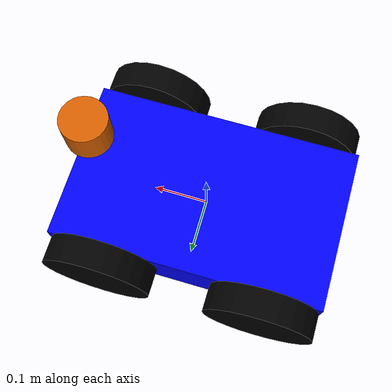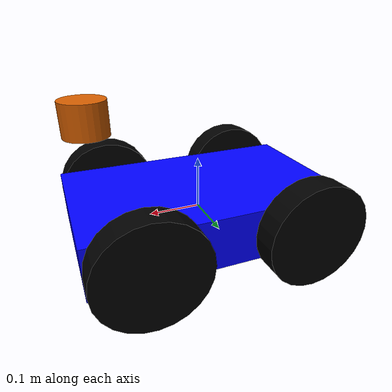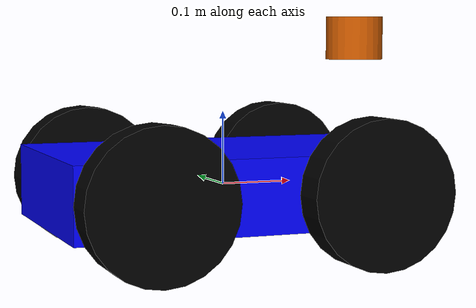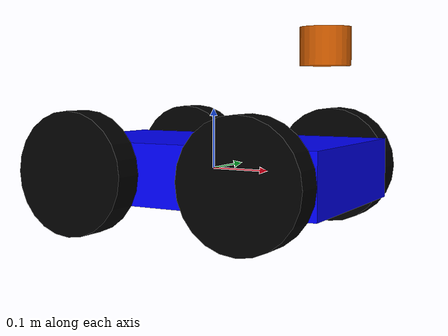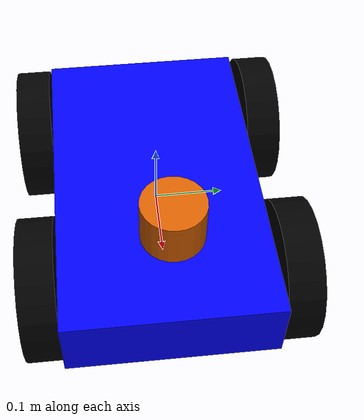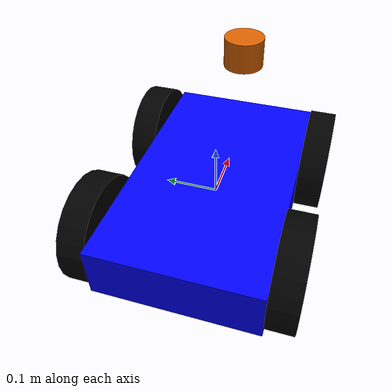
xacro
<?xml version="1.0"?>
<robot name="my_robot" xmlns:xacro="http://www.ros.org/wiki/xacro">

  <!-- ===================== BASE LINK ===================== -->
  <link name="base_link">
    <visual>
      <geometry>
        <box size="0.5 0.3 0.1"/>
      </geometry>
      <material name="blue">
        <color rgba="0 0 1 1"/>
      </material>
    </visual>
    <collision>
      <geometry>
        <box size="0.5 0.3 0.1"/>
      </geometry>
    </collision>
    <inertial>
      <mass value="5.0"/>
      <inertia
        ixx="0.041"
        ixy="0"
        ixz="0"
        iyy="0.07"
        iyz="0"
        izz="0.104"/>
    </inertial>
  </link>

  <!-- ===================== WHEELS ===================== -->
  <!-- Front Left -->
  <link name="front_left_wheel">
    <visual>
      <geometry>
        <cylinder radius="0.1" length="0.05"/>
      </geometry>
      <material name="black">
        <color rgba="0 0 0 1"/>
      </material>
    </visual>
    <collision>
      <geometry>
        <cylinder radius="0.1" length="0.05"/>
      </geometry>
    </collision>
    <inertial>
      <mass value="0.5"/>
      <inertia ixx="0.001" ixy="0" ixz="0" iyy="0.001" iyz="0" izz="0.001"/>
    </inertial>
  </link>

  <!-- Front Right -->
  <link name="front_right_wheel">
    <visual>
      <geometry>
        <cylinder radius="0.1" length="0.05"/>
      </geometry>
      <material name="black"/>
    </visual>
    <collision>
      <geometry>
        <cylinder radius="0.1" length="0.05"/>
      </geometry>
    </collision>
    <inertial>
      <mass value="0.5"/>
      <inertia ixx="0.001" ixy="0" ixz="0" iyy="0.001" iyz="0" izz="0.001"/>
    </inertial>
  </link>

  <!-- Rear Left -->
  <link name="rear_left_wheel">
    <visual>
      <geometry>
        <cylinder radius="0.1" length="0.05"/>
      </geometry>
      <material name="black"/>
    </visual>
    <collision>
      <geometry>
        <cylinder radius="0.1" length="0.05"/>
      </geometry>
    </collision>
    <inertial>
      <mass value="0.5"/>
      <inertia ixx="0.001" ixy="0" ixz="0" iyy="0.001" iyz="0" izz="0.001"/>
    </inertial>
  </link>

  <!-- Rear Right -->
  <link name="rear_right_wheel">
    <visual>
      <geometry>
        <cylinder radius="0.1" length="0.05"/>
      </geometry>
      <material name="black"/>
    </visual>
    <collision>
      <geometry>
        <cylinder radius="0.1" length="0.05"/>
      </geometry>
    </collision>
    <inertial>
      <mass value="0.5"/>
      <inertia ixx="0.001" ixy="0" ixz="0" iyy="0.001" iyz="0" izz="0.001"/>
    </inertial>
  </link>

  <!-- ===================== WHEEL JOINTS ===================== -->
  <joint name="front_left_wheel_joint" type="continuous">
    <parent link="base_link"/>
    <child link="front_left_wheel"/>
    <origin xyz="0.15 0.175 0" rpy="-1.5708 0 0"/>
    <axis xyz="0 0 1"/>
  </joint>

  <joint name="front_right_wheel_joint" type="continuous">
    <parent link="base_link"/>
    <child link="front_right_wheel"/>
    <origin xyz="0.15 -0.175 0" rpy="-1.5708 0 0"/>
    <axis xyz="0 0 1"/>
  </joint>

  <joint name="rear_left_wheel_joint" type="continuous">
    <parent link="base_link"/>
    <child link="rear_left_wheel"/>
    <origin xyz="-0.15 0.175 0" rpy="-1.5708 0 0"/>
    <axis xyz="0 0 1"/>
  </joint>

  <joint name="rear_right_wheel_joint" type="continuous">
    <parent link="base_link"/>
    <child link="rear_right_wheel"/>
    <origin xyz="-0.15 -0.175 0" rpy="-1.5708 0 0"/>
    <axis xyz="0 0 1"/>
  </joint>

  <!-- ===================== LIDAR ===================== -->
  <link name="lidar_link">
    <visual>
      <geometry>
        <cylinder radius="0.04" length="0.06"/>
      </geometry>
    </visual>
    <collision>
      <geometry>
        <cylinder radius="0.04" length="0.06"/>
      </geometry>
    </collision>
    <inertial>
      <mass value="0.1"/>
      <inertia ixx="0.0001" ixy="0" ixz="0" iyy="0.0001" iyz="0" izz="0.0001"/>
    </inertial>
  </link>

  <joint name="lidar_joint" type="fixed">
    <parent link="base_link"/>
    <child link="lidar_link"/>
    <origin xyz="0.2 0 0.2" rpy="0 0 0"/>
  </joint>

  <gazebo reference="lidar_link">
    <sensor name="lidar" type="gpu_lidar">
      <pose>0 0 0 0 0 0</pose>
      <gz_frame_id>lidar_link</gz_frame_id>
      <topic>scan</topic>
      <update_rate>50</update_rate>
      <always_on>1</always_on>
      <visualize>true</visualize>
      <lidar>
        <scan>
          <horizontal>
            <samples>360</samples>
            <resolution>1</resolution>
            <min_angle>-3.14159</min_angle>
            <max_angle>3.14159</max_angle>
          </horizontal>
          <vertical>
            <samples>1</samples>
            <resolution>1</resolution>
            <min_angle>0</min_angle>
            <max_angle>0</max_angle>
          </vertical>
        </scan>
        <range>
          <min>0.1</min>
          <max>100.0</max>
          <resolution>0.01</resolution>
        </range>
      </lidar>
    </sensor>
  </gazebo>

  <!-- ===================== DIFF DRIVE (4-wheel, paired L/R) ===================== -->
  <gazebo>
    <plugin
      filename="gz-sim-diff-drive-system"
      name="gz::sim::systems::DiffDrive">
      <left_joint>front_left_wheel_joint</left_joint>
      <left_joint>rear_left_wheel_joint</left_joint>
      <right_joint>front_right_wheel_joint</right_joint>
      <right_joint>rear_right_wheel_joint</right_joint>
      <wheel_separation>0.35</wheel_separation>
      <wheel_radius>0.1</wheel_radius>
      <topic>/cmd_vel</topic>
      <odom_topic>/odom</odom_topic>
      <tf_topic>/tf</tf_topic>
      <frame_id>odom</frame_id>
      <child_frame_id>base_link</child_frame_id>
    </plugin>
  </gazebo>

</robot>
